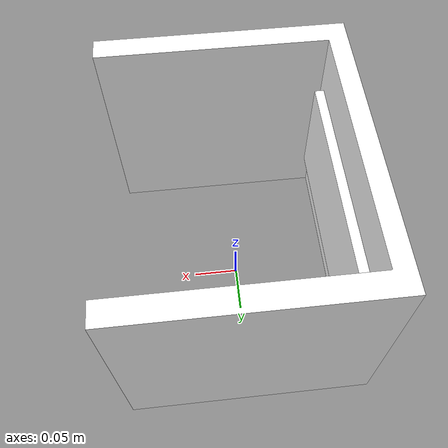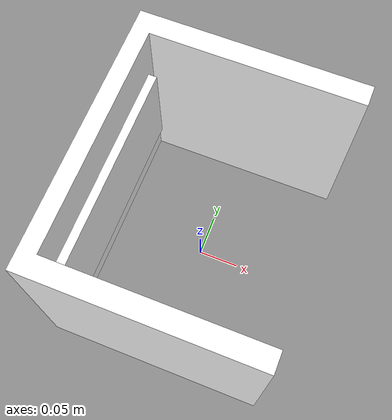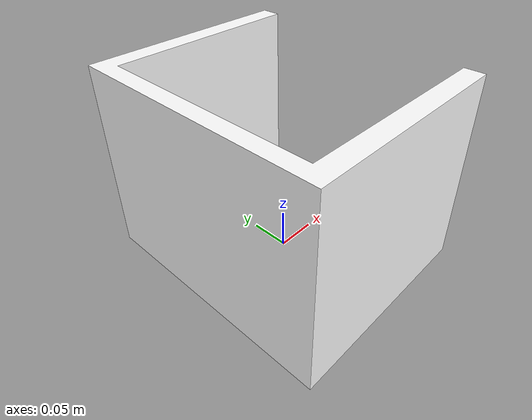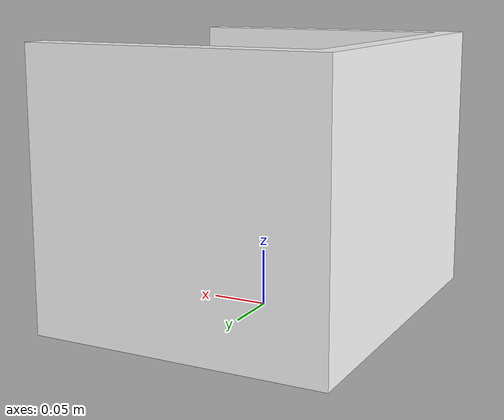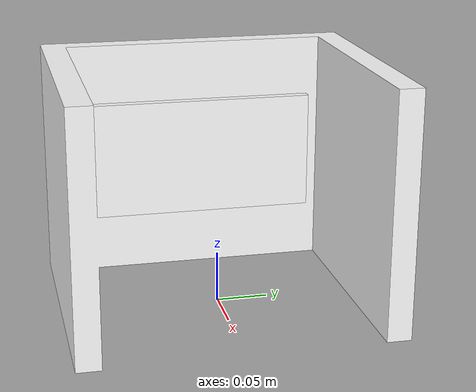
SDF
<?xml version="1.0"?>
<sdf version="1.6">
  <model name="TAM">
    <static>true</static>
    <link name="base_link">
      <!-- Visual original del modelo (blanco por default) -->
      <visual name="visual">
        <geometry>
          <mesh>
            <uri>model://TAM/meshes/TAM.stl</uri>
            <scale>1 1.2 1</scale>
          </mesh>
        </geometry>
        <material>
          <ambient>1 1 1 1</ambient>
          <diffuse>1 1 1 1</diffuse>
          <specular>0.5 0.5 0.5 1</specular>
        </material>
      </visual>

      <!-- Visual adicional (rectángulo para cambio dinámico de color) -->
      <visual name="task_indicator">
        <pose>-0.105 0 0.12 0 0 0</pose> <!-- Ajusta la posición según necesidad -->
        <geometry>
          <box>
            <size>0.01 0.24 0.12</size> <!-- Ajusta tamaño según necesidad -->
          </box>
        </geometry>
        <material>
          <ambient>1 1 1 1</ambient>
          <diffuse>1 1 1 1</diffuse>
          <emissive>1 1 1 1</emissive> <!-- Brillo inicial (blanco standby) -->
        </material>
        <!-- Plugin de color  -->
        <plugin name="tam_color_plugin" filename="libTAMColorPlugin.so"/>
      </visual>

      <collision name="collision">
        <geometry>
          <mesh>
            <uri>model://TAM/meshes/TAM.stl</uri>
            <scale>1 1.2 1</scale>
          </mesh>
        </geometry>
      </collision>

    </link>
  </model>
</sdf>
